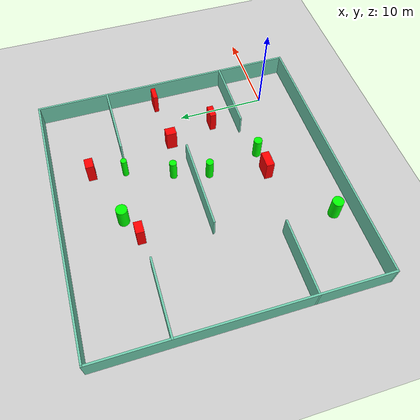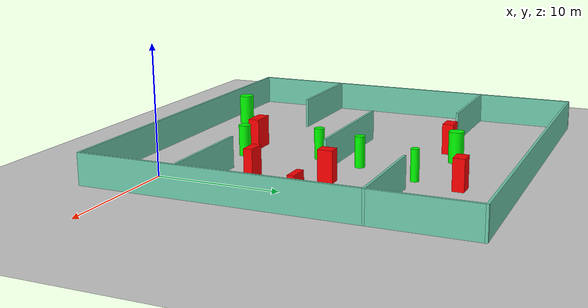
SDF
<sdf version="1.7">
 <world name="default">
  <light name="sun" type="directional">
   <pose>0 0 10 0 -0 0</pose>
   <diffuse>0.8 0.8 0.8 1</diffuse>
   <specular>0.2 0.2 0.2 1</specular>
   <attenuation>
    <range>1000</range>
    <constant>0.9</constant>
    <linear>0.01</linear>
    <quadratic>0.001</quadratic>
   </attenuation>
   <direction>-0.5 0.1 -0.9</direction>
   <spot><inner_angle>0</inner_angle><outer_angle>0</outer_angle><falloff>0</falloff></spot>
  </light>
  <model name="ground_plane">
   <static>1</static>
   <link name="link">
    <collision name="collision">
     <geometry><plane><normal>0 0 1</normal><size>100 100</size></plane></geometry>
     <surface>
      <contact><collide_bitmask>65535</collide_bitmask></contact>
      <friction><ode><mu>100</mu><mu2>50</mu2></ode></friction>
     </surface>
    </collision>
    <visual name="visual">
     <cast_shadows>0</cast_shadows>
     <geometry><plane><normal>0 0 1</normal><size>100 100</size></plane></geometry>
     <material>
      <script><uri>file://media/materials/scripts/gazebo.material</uri><name>Gazebo/Grey</name></script>
     </material>
    </visual>
   </link>
  </model>
  <gravity>0 0 -9.8</gravity>
  <magnetic_field>6e-06 2.3e-05 -4.2e-05</magnetic_field>
  <atmosphere type="adiabatic"/>
  <physics type="ode">
   <max_step_size>0.001</max_step_size>
   <real_time_factor>1</real_time_factor>
   <real_time_update_rate>1000</real_time_update_rate>
  </physics>
  <scene><ambient>0.4 0.4 0.4 1</ambient><background>0.7 0.7 0.7 1</background><shadows>1</shadows></scene>
  <spherical_coordinates>
   <surface_model>EARTH_WGS84</surface_model>
   <latitude_deg>0</latitude_deg>
   <longitude_deg>0</longitude_deg>
   <elevation>0</elevation>
   <heading_deg>0</heading_deg>
  </spherical_coordinates>
  <model name="my_base_walls">
   <link name="Wall_10">
    <collision name="Wall_10_Collision">
     <geometry><box><size>8.2 0.2 2.5</size></box></geometry>
     <pose>0 0 1.25 0 -0 0</pose>
    </collision>
    <visual name="Wall_10_Visual">
     <pose>0 0 1.25 0 -0 0</pose>
     <geometry><box><size>8.2 0.2 2.5</size></box></geometry>
     <material>
      <script><uri>file://media/materials/scripts/gazebo.material</uri><name>Gazebo/Grey</name></script>
      <ambient>0.435294 0.796078 0.67451 1</ambient>
     </material>
     <meta><layer>0</layer></meta>
    </visual>
    <pose>-11 -7 0 0 -0 0</pose>
   </link>
   <link name="Wall_12">
    <collision name="Wall_12_Collision">
     <geometry><box><size>8.2 0.2 2.5</size></box></geometry>
     <pose>0 0 1.25 0 -0 0</pose>
    </collision>
    <visual name="Wall_12_Visual">
     <pose>0 0 1.25 0 -0 0</pose>
     <geometry><box><size>8.2 0.2 2.5</size></box></geometry>
     <material>
      <script><uri>file://media/materials/scripts/gazebo.material</uri><name>Gazebo/Grey</name></script>
      <ambient>0.435294 0.796078 0.67451 1</ambient>
     </material>
     <meta><layer>0</layer></meta>
    </visual>
    <pose>-11 7 0 0 -0 0</pose>
   </link>
   <link name="Wall_14">
    <collision name="Wall_14_Collision">
     <geometry><box><size>8.2 0.2 2.5</size></box></geometry>
     <pose>0 0 1.25 0 -0 0</pose>
    </collision>
    <visual name="Wall_14_Visual">
     <pose>0 0 1.25 0 -0 0</pose>
     <geometry><box><size>8.2 0.2 2.5</size></box></geometry>
     <material>
      <script><uri>file://media/materials/scripts/gazebo.material</uri><name>Gazebo/Grey</name></script>
      <ambient>0.435294 0.796078 0.67451 1</ambient>
     </material>
     <meta><layer>0</layer></meta>
    </visual>
    <pose>11 7 0 0 -0 3.14159</pose>
   </link>
   <link name="Wall_16">
    <collision name="Wall_16_Collision">
     <geometry><box><size>10.2 0.2 2.5</size></box></geometry>
     <pose>0 0 1.25 0 -0 0</pose>
    </collision>
    <visual name="Wall_16_Visual">
     <pose>0 0 1.25 0 -0 0</pose>
     <geometry><box><size>10.2 0.2 2.5</size></box></geometry>
     <material>
      <script><uri>file://media/materials/scripts/gazebo.material</uri><name>Gazebo/Grey</name></script>
      <ambient>0.435294 0.796078 0.67451 1</ambient>
     </material>
     <meta><layer>0</layer></meta>
    </visual>
    <pose>0 0 0 0 -0 3.14159</pose>
   </link>
   <link name="Wall_2">
    <collision name="Wall_2_Collision">
     <geometry><box><size>30.2 0.2 2.5</size></box></geometry>
     <pose>0 0 1.25 0 -0 0</pose>
    </collision>
    <visual name="Wall_2_Visual">
     <pose>0 0 1.25 0 -0 0</pose>
     <geometry><box><size>30.2 0.2 2.5</size></box></geometry>
     <material>
      <script><uri>file://media/materials/scripts/gazebo.material</uri><name>Gazebo/Grey</name></script>
      <ambient>0.435294 0.796078 0.67451 1</ambient>
     </material>
     <meta><layer>0</layer></meta>
    </visual>
    <pose>0 -15 0 0 -0 3.14159</pose>
   </link>
   <link name="Wall_3">
    <collision name="Wall_3_Collision">
     <geometry><box><size>30.2 0.2 2.5</size></box></geometry>
     <pose>0 0 1.25 0 -0 0</pose>
    </collision>
    <visual name="Wall_3_Visual">
     <pose>0 0 1.25 0 -0 0</pose>
     <geometry><box><size>30.2 0.2 2.5</size></box></geometry>
     <material>
      <script><uri>file://media/materials/scripts/gazebo.material</uri><name>Gazebo/Grey</name></script>
      <ambient>0.435294 0.796078 0.67451 1</ambient>
     </material>
     <meta><layer>0</layer></meta>
    </visual>
    <pose>-15 0 0 0 -0 1.5708</pose>
   </link>
   <link name="Wall_4">
    <collision name="Wall_4_Collision">
     <geometry><box><size>30.2 0.2 2.5</size></box></geometry>
     <pose>0 0 1.25 0 -0 0</pose>
    </collision>
    <visual name="Wall_4_Visual">
     <pose>0 0 1.25 0 -0 0</pose>
     <geometry><box><size>30.2 0.2 2.5</size></box></geometry>
     <material>
      <script><uri>file://media/materials/scripts/gazebo.material</uri><name>Gazebo/Grey</name></script>
      <ambient>0.435294 0.796078 0.67451 1</ambient>
     </material>
     <meta><layer>0</layer></meta>
    </visual>
    <pose>0 15 0 0 -0 0</pose>
   </link>
   <link name="Wall_6">
    <collision name="Wall_6_Collision">
     <geometry><box><size>30.2 0.2 2.5</size></box></geometry>
     <pose>0 0 1.25 0 -0 0</pose>
    </collision>
    <visual name="Wall_6_Visual">
     <pose>0 0 1.25 0 -0 0</pose>
     <geometry><box><size>30.2 0.2 2.5</size></box></geometry>
     <material>
      <script><uri>file://media/materials/scripts/gazebo.material</uri><name>Gazebo/Grey</name></script>
      <ambient>0.435294 0.796078 0.67451 1</ambient>
     </material>
     <meta><layer>0</layer></meta>
    </visual>
    <pose>15 0 0 0 -0 1.5708</pose>
   </link>
   <link name="Wall_8">
    <collision name="Wall_8_Collision">
     <geometry><box><size>8.2 0.2 2.5</size></box></geometry>
     <pose>0 0 1.25 0 -0 0</pose>
    </collision>
    <visual name="Wall_8_Visual">
     <pose>0 0 1.25 0 -0 0</pose>
     <geometry><box><size>8.2 0.2 2.5</size></box></geometry>
     <material>
      <script><uri>file://media/materials/scripts/gazebo.material</uri><name>Gazebo/Grey</name></script>
      <ambient>0.435294 0.796078 0.67451 1</ambient>
     </material>
     <meta><layer>0</layer></meta>
    </visual>
    <pose>11 -7 0 0 -0 3.14159</pose>
   </link>
   <static>1</static>
   <pose>-11 11 0 0 -0 0</pose>
  </model>
  <model name="cylinder1">
   <static>1</static>
   <link name="link">
    <inertial>
     <mass>1</mass>
     <inertia><ixx>0.5</ixx><ixy>0</ixy><ixz>0</ixz><iyy>0.5</iyy><iyz>0</iyz><izz>1</izz></inertia>
    </inertial>
    <collision name="collision">
     <geometry><cylinder><radius>0.42130232228713754</radius><length>2.5</length></cylinder></geometry>
    </collision>
    <visual name="visual">
     <geometry><cylinder><radius>0.42130232228713754</radius><length>2.5</length></cylinder></geometry>
     <material>
      <ambient>0 1 0 1</ambient>
      <diffuse>0 1 0 1</diffuse>
      <specular>0.1 0.1 0.1 1</specular>
      <emissive>0 0 0 0</emissive>
     </material>
    </visual>
   </link>
   <pose>-8.907969057412032 9.22796767206963 1.25 0 0 0</pose>
  </model>
  <model name="cylinder2">
   <static>1</static>
   <link name="link">
    <inertial>
     <mass>1</mass>
     <inertia><ixx>0.5</ixx><ixy>0</ixy><ixz>0</ixz><iyy>0.5</iyy><iyz>0</iyz><izz>1</izz></inertia>
    </inertial>
    <collision name="collision">
     <geometry><cylinder><radius>0.3324524552222523</radius><length>2.5</length></cylinder></geometry>
    </collision>
    <visual name="visual">
     <geometry><cylinder><radius>0.3324524552222523</radius><length>2.5</length></cylinder></geometry>
     <material>
      <ambient>0 1 0 1</ambient>
      <diffuse>0 1 0 1</diffuse>
      <specular>0.1 0.1 0.1 1</specular>
      <emissive>0 0 0 0</emissive>
     </material>
    </visual>
   </link>
   <pose>-6.0615781254441075 18.13390860023517 1.25 0 0 0</pose>
  </model>
  <model name="cylinder3">
   <static>1</static>
   <link name="link">
    <inertial>
     <mass>1</mass>
     <inertia><ixx>0.5</ixx><ixy>0</ixy><ixz>0</ixz><iyy>0.5</iyy><iyz>0</iyz><izz>1</izz></inertia>
    </inertial>
    <collision name="collision">
     <geometry><cylinder><radius>0.4732004964582058</radius><length>2.5</length></cylinder></geometry>
    </collision>
    <visual name="visual">
     <geometry><cylinder><radius>0.4732004964582058</radius><length>2.5</length></cylinder></geometry>
     <material>
      <ambient>0 1 0 1</ambient>
      <diffuse>0 1 0 1</diffuse>
      <specular>0.1 0.1 0.1 1</specular>
      <emissive>0 0 0 0</emissive>
     </material>
    </visual>
   </link>
   <pose>-7.636462409267448 3.1972276204937726 1.25 0 0 0</pose>
  </model>
  <model name="cylinder4">
   <static>1</static>
   <link name="link">
    <inertial>
     <mass>1</mass>
     <inertia><ixx>0.5</ixx><ixy>0</ixy><ixz>0</ixz><iyy>0.5</iyy><iyz>0</iyz><izz>1</izz></inertia>
    </inertial>
    <collision name="collision">
     <geometry><cylinder><radius>0.4000212708025261</radius><length>2.5</length></cylinder></geometry>
    </collision>
    <visual name="visual">
     <geometry><cylinder><radius>0.4000212708025261</radius><length>2.5</length></cylinder></geometry>
     <material>
      <ambient>0 1 0 1</ambient>
      <diffuse>0 1 0 1</diffuse>
      <specular>0.1 0.1 0.1 1</specular>
      <emissive>0 0 0 0</emissive>
     </material>
    </visual>
   </link>
   <pose>-7.880711677562001 13.08590195815798 1.25 0 0 0</pose>
  </model>
  <model name="cylinder5">
   <static>1</static>
   <link name="link">
    <inertial>
     <mass>1</mass>
     <inertia><ixx>0.5</ixx><ixy>0</ixy><ixz>0</ixz><iyy>0.5</iyy><iyz>0</iyz><izz>1</izz></inertia>
    </inertial>
    <collision name="collision">
     <geometry><cylinder><radius>0.6121107835701758</radius><length>2.5</length></cylinder></geometry>
    </collision>
    <visual name="visual">
     <geometry><cylinder><radius>0.6121107835701758</radius><length>2.5</length></cylinder></geometry>
     <material>
      <ambient>0 1 0 1</ambient>
      <diffuse>0 1 0 1</diffuse>
      <specular>0.1 0.1 0.1 1</specular>
      <emissive>0 0 0 0</emissive>
     </material>
    </visual>
   </link>
   <pose>-11.982386524601782 19.60147265748113 1.25 0 0 0</pose>
  </model>
  <model name="cylinder6">
   <static>1</static>
   <link name="link">
    <inertial>
     <mass>1</mass>
     <inertia><ixx>0.5</ixx><ixy>0</ixy><ixz>0</ixz><iyy>0.5</iyy><iyz>0</iyz><izz>1</izz></inertia>
    </inertial>
    <collision name="collision">
     <geometry><cylinder><radius>0.6116689275387581</radius><length>2.5</length></cylinder></geometry>
    </collision>
    <visual name="visual">
     <geometry><cylinder><radius>0.6116689275387581</radius><length>2.5</length></cylinder></geometry>
     <material>
      <ambient>0 1 0 1</ambient>
      <diffuse>0 1 0 1</diffuse>
      <specular>0.1 0.1 0.1 1</specular>
      <emissive>0 0 0 0</emissive>
     </material>
    </visual>
   </link>
   <pose>-17.423455124347182 -1.9117977589637172 1.25 0 0 0</pose>
  </model>
  <model name="box1">
   <static>1</static>
   <link name="link">
    <inertial>
     <mass>1</mass>
     <inertia><ixx>0.083</ixx><ixy>0</ixy><ixz>0</ixz><iyy>0.083</iyy><iyz>0</iyz><izz>0.083</izz></inertia>
    </inertial>
    <collision name="collision">
     <geometry><box><size>1.208473647795914 0.9100501586782415 2.5</size></box></geometry>
    </collision>
    <visual name="visual">
     <geometry><box><size>1.208473647795914 0.9100501586782415 2.5</size></box></geometry>
     <material>
      <ambient>1 0 0 1</ambient>
      <diffuse>1 0 0 1</diffuse>
      <specular>0.1 0.1 0.1 1</specular>
      <emissive>0 0 0 0</emissive>
     </material>
    </visual>
    <sensor name="my_contact" type="contact">
     <contact><collision>box_collision</collision><topic>__default_topic__</topic></contact>
    </sensor>
   </link>
   <pose>-5.296829341509243 21.78825396080431 1.25 0 0 0</pose>
  </model>
  <model name="box2">
   <static>1</static>
   <link name="link">
    <inertial>
     <mass>1</mass>
     <inertia><ixx>0.083</ixx><ixy>0</ixy><ixz>0</ixz><iyy>0.083</iyy><iyz>0</iyz><izz>0.083</izz></inertia>
    </inertial>
    <collision name="collision">
     <geometry><box><size>1.5283484137339494 0.5208398144301039 2.5</size></box></geometry>
    </collision>
    <visual name="visual">
     <geometry><box><size>1.5283484137339494 0.5208398144301039 2.5</size></box></geometry>
     <material>
      <ambient>1 0 0 1</ambient>
      <diffuse>1 0 0 1</diffuse>
      <specular>0.1 0.1 0.1 1</specular>
      <emissive>0 0 0 0</emissive>
     </material>
    </visual>
    <sensor name="my_contact" type="contact">
     <contact><collision>box_collision</collision><topic>__default_topic__</topic></contact>
    </sensor>
   </link>
   <pose>2.6036048283917417 12.585167445522426 1.25 0 0 0</pose>
  </model>
  <model name="box3">
   <static>1</static>
   <link name="link">
    <inertial>
     <mass>1</mass>
     <inertia><ixx>0.083</ixx><ixy>0</ixy><ixz>0</ixz><iyy>0.083</iyy><iyz>0</iyz><izz>0.083</izz></inertia>
    </inertial>
    <collision name="collision">
     <geometry><box><size>1.4714060376004867 0.6942119050075746 2.5</size></box></geometry>
    </collision>
    <visual name="visual">
     <geometry><box><size>1.4714060376004867 0.6942119050075746 2.5</size></box></geometry>
     <material>
      <ambient>1 0 0 1</ambient>
      <diffuse>1 0 0 1</diffuse>
      <specular>0.1 0.1 0.1 1</specular>
      <emissive>0 0 0 0</emissive>
     </material>
    </visual>
    <sensor name="my_contact" type="contact">
     <contact><collision>box_collision</collision><topic>__default_topic__</topic></contact>
    </sensor>
   </link>
   <pose>-2.0223125089522114 6.872161489525114 1.25 0 0 0</pose>
  </model>
  <model name="box4">
   <static>1</static>
   <link name="link">
    <inertial>
     <mass>1</mass>
     <inertia><ixx>0.083</ixx><ixy>0</ixy><ixz>0</ixz><iyy>0.083</iyy><iyz>0</iyz><izz>0.083</izz></inertia>
    </inertial>
    <collision name="collision">
     <geometry><box><size>1.8296178219703214 0.8934745555480662 2.5</size></box></geometry>
    </collision>
    <visual name="visual">
     <geometry><box><size>1.8296178219703214 0.8934745555480662 2.5</size></box></geometry>
     <material>
      <ambient>1 0 0 1</ambient>
      <diffuse>1 0 0 1</diffuse>
      <specular>0.1 0.1 0.1 1</specular>
      <emissive>0 0 0 0</emissive>
     </material>
    </visual>
    <sensor name="my_contact" type="contact">
     <contact><collision>box_collision</collision><topic>__default_topic__</topic></contact>
    </sensor>
   </link>
   <pose>-10.293261686226916 3.0691826174574395 1.25 0 0 0</pose>
  </model>
  <model name="box5">
   <static>1</static>
   <link name="link">
    <inertial>
     <mass>1</mass>
     <inertia><ixx>0.083</ixx><ixy>0</ixy><ixz>0</ixz><iyy>0.083</iyy><iyz>0</iyz><izz>0.083</izz></inertia>
    </inertial>
    <collision name="collision">
     <geometry><box><size>1.3332428939610672 0.8876019653360341 2.5</size></box></geometry>
    </collision>
    <visual name="visual">
     <geometry><box><size>1.3332428939610672 0.8876019653360341 2.5</size></box></geometry>
     <material>
      <ambient>1 0 0 1</ambient>
      <diffuse>1 0 0 1</diffuse>
      <specular>0.1 0.1 0.1 1</specular>
      <emissive>0 0 0 0</emissive>
     </material>
    </visual>
    <sensor name="my_contact" type="contact">
     <contact><collision>box_collision</collision><topic>__default_topic__</topic></contact>
    </sensor>
   </link>
   <pose>-14.44886992735751 18.363596759006423 1.25 0 0 0</pose>
  </model>
  <model name="box6">
   <static>1</static>
   <link name="link">
    <inertial>
     <mass>1</mass>
     <inertia><ixx>0.083</ixx><ixy>0</ixy><ixz>0</ixz><iyy>0.083</iyy><iyz>0</iyz><izz>0.083</izz></inertia>
    </inertial>
    <collision name="collision">
     <geometry><box><size>0.9702589617985732 1.1864487666173478 2.5</size></box></geometry>
    </collision>
    <visual name="visual">
     <geometry><box><size>0.9702589617985732 1.1864487666173478 2.5</size></box></geometry>
     <material>
      <ambient>1 0 0 1</ambient>
      <diffuse>1 0 0 1</diffuse>
      <specular>0.1 0.1 0.1 1</specular>
      <emissive>0 0 0 0</emissive>
     </material>
    </visual>
    <sensor name="my_contact" type="contact">
     <contact><collision>box_collision</collision><topic>__default_topic__</topic></contact>
    </sensor>
   </link>
   <pose>-3.5620853268294077 12.20824103294657 1.25 0 0 0</pose>
  </model>
 </world>
</sdf>
